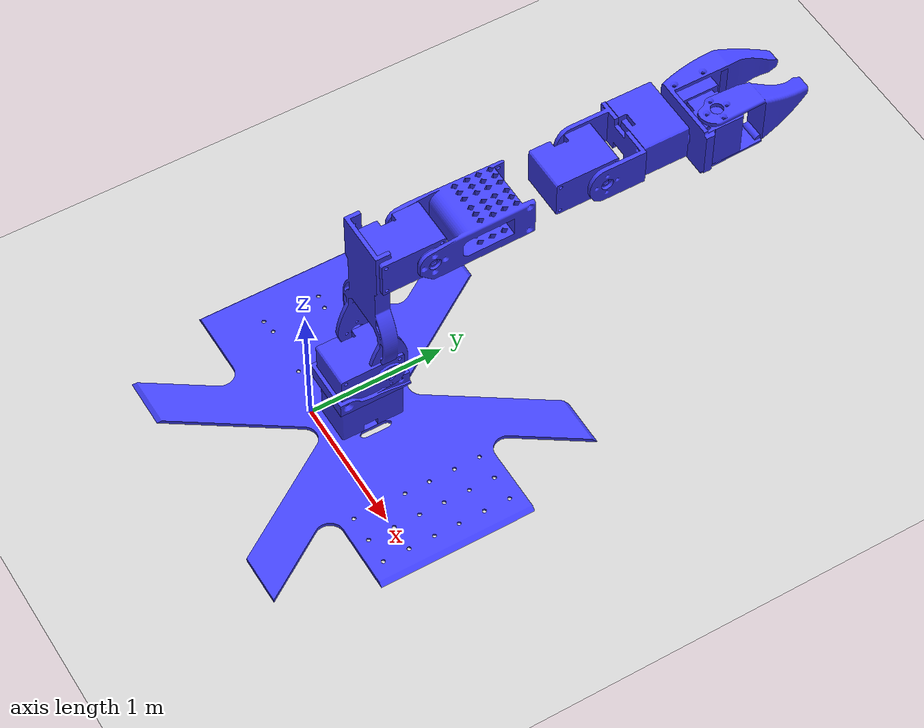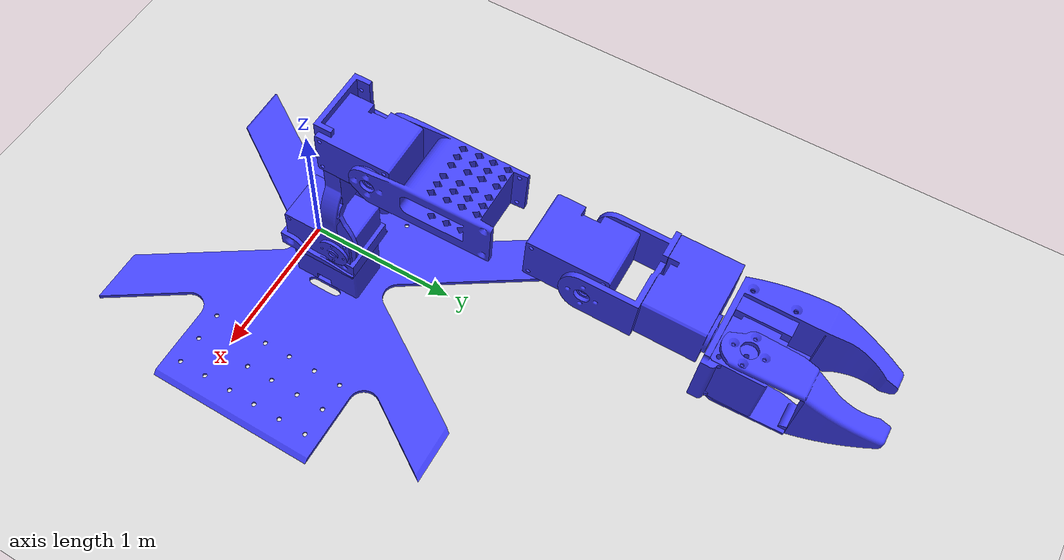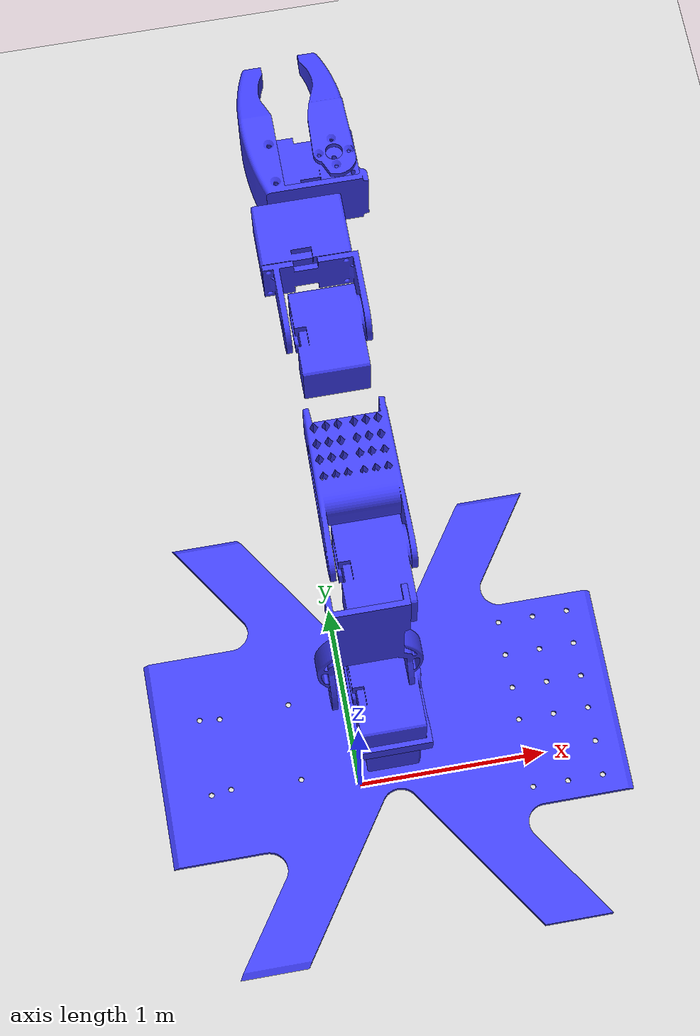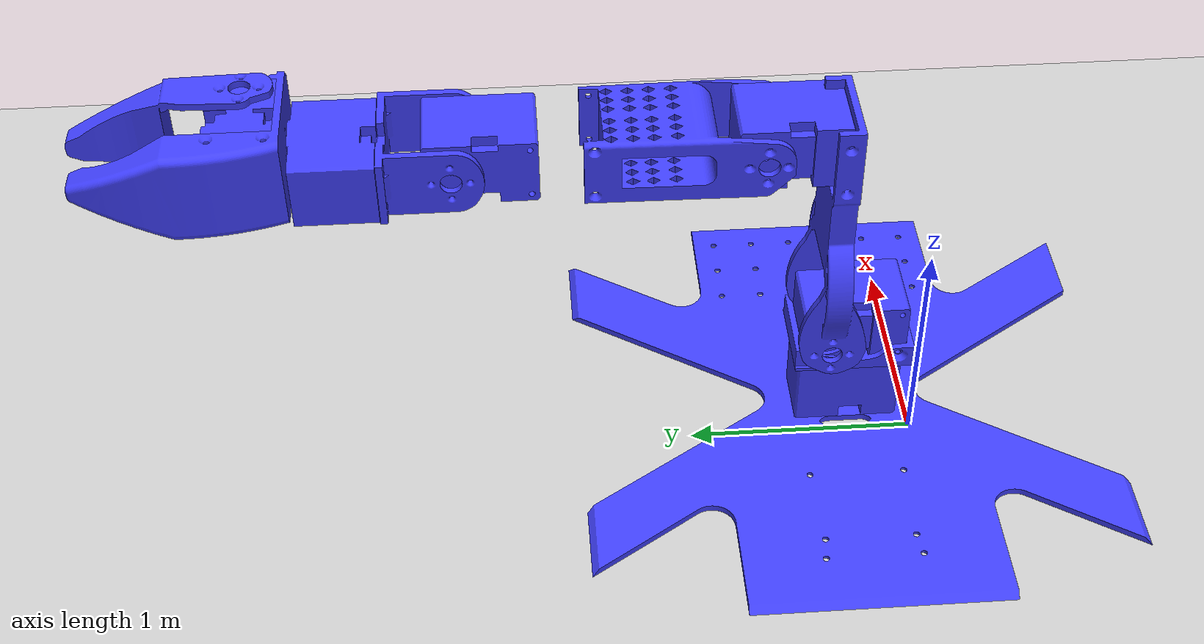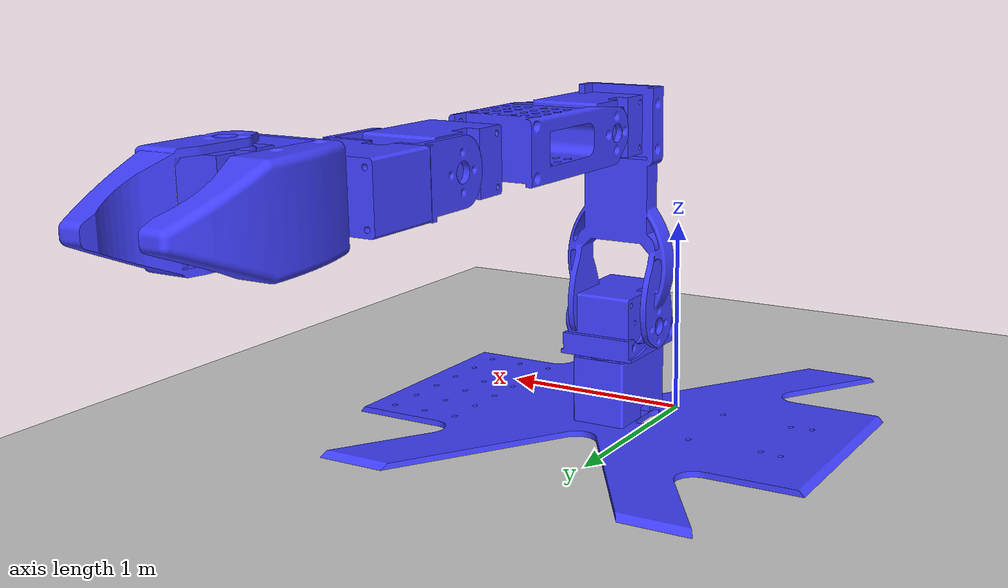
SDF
<?xml version="1.0" ?>
<sdf version="1.9">
  <world name="arm_world">

    <light type="directional" name="sun_light">
        <cast_shadows>true</cast_shadows>
        <pose>0 0 10 0 -0 0</pose>
        <diffuse>0.8 0.8 0.8 1</diffuse>
        <specular>0.1 0.1 0.1 1</specular>
        <attenuation>
            <range>1000</range>
            <constant>0.9</constant>
            <linear>0.01</linear>
            <quadratic>0.001</quadratic>
        </attenuation>
        <direction>-0.5 0.1 -0.9</direction>
    </light>

    <model name="ground_plane_model">
        <static>true</static>
        <link name="link">
            <collision name="collision">
                <geometry>
                    <plane>
                        <normal>0 0 1</normal>
                        <size>100 100</size>
                    </plane>
                </geometry>
            </collision>
            <visual name="visual">
                <geometry>
                    <plane>
                        <normal>0 0 1</normal>
                        <size>100 100</size>
                    </plane>
                </geometry>
                <material>
                    <ambient>0.8 0.8 0.8 1</ambient>
                    <diffuse>0.8 0.8 0.8 1</diffuse>
                    <specular>0.0 0.0 0.0 1</specular>
                </material>
            </visual>
        </link>
    </model>

    <include>
  	<uri>file:///home/gazebo-cad/Jaw_roboarm/src/jawarm_description/jaw.sdf</uri>
    </include>

  </world>
</sdf>

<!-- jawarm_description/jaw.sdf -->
<sdf version='1.11'>
  <model name='jawpixarm'>
    <link name='base_link'>
      <inertial>
        <pose>-0.2349740932642487 0.77388601036269433 0.022227979274611401 0 0 0</pose>
        <mass>0.077200000000000005</mass>
        <inertia>
          <ixx>0.01441117098445596</ixx>
          <ixy>0.015974507772020731</ixy>
          <ixz>-0.00048901554404145076</ixz>
          <iyy>0.018147906735751</iyy>
          <iyz>0.00043566847459289569</iyz>
          <izz>0.032448404145078019</izz>
        </inertia>
      </inertial>
      <collision name='base_link_collision'>
        <pose>-1.05 1.5 0 1.5708 0 0</pose>
        <geometry>
          <mesh>
            <scale>0.01 0.01 0.01</scale>
            <uri>meshes/base.STL</uri>
          </mesh>
        </geometry>
      </collision>
      <collision name='base_link_fixed_joint_lump__servo1_link_collision_1'>
        <pose>0.050000000000000003 0.52000000000000002 0.029999999999999999 1.5708 0 0</pose>
        <geometry>
          <mesh>
            <scale>0.01 0.01 0.01</scale>
            <uri>meshes/servo.STL</uri>
          </mesh>
        </geometry>
      </collision>
      <visual name='base_link_visual'>
        <pose>-1.05 1.5 0 1.5708 0 0</pose>
        <geometry>
          <mesh>
            <scale>0.01 0.01 0.01</scale>
            <uri>meshes/base.STL</uri>
          </mesh>
        </geometry>
        <material>
          <diffuse>0.25 0.25 1 1</diffuse>
          <ambient>0.25 0.25 1 1</ambient>
        </material>
      </visual>
      <visual name='base_link_fixed_joint_lump__servo1_link_visual_1'>
        <pose>0.050000000000000003 0.52000000000000002 0.029999999999999999 1.5708 0 0</pose>
        <geometry>
          <mesh>
            <scale>0.01 0.01 0.01</scale>
            <uri>meshes/servo.STL</uri>
          </mesh>
        </geometry>
        <material>
          <diffuse>0.25 0.25 1 1</diffuse>
          <ambient>0.25 0.25 1 1</ambient>
        </material>
      </visual>
    </link>
    <joint name='baseToshoulder_to_p1' type='revolute'>
      <pose relative_to='base_link'>0.19 0.40999999999999998 0.40000000000000002 0 0 0</pose>
      <parent>base_link</parent>
      <child>baseToshoulder_link</child>
      <axis>
        <xyz>0 0 1</xyz>
        <limit>
          <lower>-1.5700000000000001</lower>
          <upper>1.5700000000000001</upper>
          <effort>10</effort>
          <velocity>1</velocity>
        </limit>
        <dynamics>
          <spring_reference>0</spring_reference>
          <spring_stiffness>0</spring_stiffness>
        </dynamics>
      </axis>
    </joint>
    <link name='baseToshoulder_link'>
      <pose relative_to='baseToshoulder_to_p1'>0 0 0 0 0 0</pose>
      <inertial>
        <pose>0.070833333333333345 0.50363095238095235 0.085059523809523807 0 0 0</pose>
        <mass>0.067199999999999996</mass>
        <inertia>
          <ixx>0.001340273809523812</ixx>
          <ixy>0.00013108333333333331</ixy>
          <ixz>-0.00044091666666666682</ixz>
          <iyy>0.0014451130952377979</iyy>
          <iyz>0.00034643460462003553</iyz>
          <izz>0.00036782738095268719</izz>
        </inertia>
      </inertial>
      <collision name='baseToshoulder_link_collision'>
        <pose>-0.20000000000000001 -0.38800000000000001 -0.20000000000000001 0 0 0</pose>
        <geometry>
          <mesh>
            <scale>0.01 0.01 0.01</scale>
            <uri>meshes/base_to_shoulder.STL</uri>
          </mesh>
        </geometry>
      </collision>
      <collision name='baseToshoulder_link_fixed_joint_lump__servo2_link_collision_1'>
        <pose>-0.17000000000000001 0.109 0.29999999999999999 1.570796326794897 1.5707963267948966 0</pose>
        <geometry>
          <mesh>
            <scale>0.01 0.01 0.01</scale>
            <uri>meshes/servo.STL</uri>
          </mesh>
        </geometry>
      </collision>
      <visual name='baseToshoulder_link_visual'>
        <pose>-0.20000000000000001 -0.38800000000000001 -0.20000000000000001 0 0 0</pose>
        <geometry>
          <mesh>
            <scale>0.01 0.01 0.01</scale>
            <uri>meshes/base_to_shoulder.STL</uri>
          </mesh>
        </geometry>
        <material>
          <diffuse>0.25 0.25 1 1</diffuse>
          <ambient>0.25 0.25 1 1</ambient>
        </material>
      </visual>
      <visual name='baseToshoulder_link_fixed_joint_lump__servo2_link_visual_1'>
        <pose>-0.17000000000000001 0.109 0.29999999999999999 1.570796326794897 1.5707963267948966 0</pose>
        <geometry>
          <mesh>
            <scale>0.01 0.01 0.01</scale>
            <uri>meshes/servo.STL</uri>
          </mesh>
        </geometry>
        <material>
          <diffuse>0.25 0.25 1 1</diffuse>
          <ambient>0.25 0.25 1 1</ambient>
        </material>
      </visual>
    </link>
    <joint name='shoulder_to_p2' type='revolute'>
      <pose relative_to='baseToshoulder_link'>0.19 -0.001 0.155 3.1415926535897931 1.5707926536359933 3.1415926535897931</pose>
      <parent>baseToshoulder_link</parent>
      <child>shoulder_link</child>
      <axis>
        <xyz>0 0 1</xyz>
        <limit>
          <lower>-1.5700000000000001</lower>
          <upper>1.5700000000000001</upper>
          <effort>10</effort>
          <velocity>1</velocity>
        </limit>
        <dynamics>
          <spring_reference>0</spring_reference>
          <spring_stiffness>0</spring_stiffness>
        </dynamics>
      </axis>
    </joint>
    <link name='shoulder_link'>
      <pose relative_to='shoulder_to_p2'>0 0 0 0 0 0</pose>
      <inertial>
        <pose>0.070833333333333345 0.44247023809523822 0.048601190476190471 0 0 0</pose>
        <mass>0.067199999999999996</mass>
        <inertia>
          <ixx>0.0025154784523809481</ixx>
          <ixy>0.00062085833333333377</ixy>
          <ixz>-0.0001489583333333333</ixz>
          <iyy>0.00041283184523779832</iyy>
          <iyz>0.0005543378784295599</iyz>
          <izz>0.0025753132738098208</izz>
        </inertia>
      </inertial>
      <collision name='shoulder_link_collision'>
        <pose>0.11 0.157 0.029999999999999999 -3.1415000000000002 1.5707963267948966 0</pose>
        <geometry>
          <mesh>
            <scale>0.01 0.01 0.01</scale>
            <uri>meshes/shoulder.STL</uri>
          </mesh>
        </geometry>
      </collision>
      <collision name='shoulder_link_fixed_joint_lump__servo3_link_collision_1'>
        <pose>-1.139 0.43099999999999999 -0.35999999999999999 1.5707926535897929 9.2653589793057284e-05 -9.265358979305727e-05</pose>
        <geometry>
          <mesh>
            <scale>0.01 0.01 0.01</scale>
            <uri>meshes/servo.STL</uri>
          </mesh>
        </geometry>
      </collision>
      <visual name='shoulder_link_visual'>
        <pose>0.11 0.157 0.029999999999999999 -3.1415000000000002 1.5707963267948966 0</pose>
        <geometry>
          <mesh>
            <scale>0.01 0.01 0.01</scale>
            <uri>meshes/shoulder.STL</uri>
          </mesh>
        </geometry>
        <material>
          <diffuse>0.25 0.25 1 1</diffuse>
          <ambient>0.25 0.25 1 1</ambient>
        </material>
      </visual>
      <visual name='shoulder_link_fixed_joint_lump__servo3_link_visual_1'>
        <pose>-1.139 0.43099999999999999 -0.35999999999999999 1.5707926535897929 9.2653589793057284e-05 -9.265358979305727e-05</pose>
        <geometry>
          <mesh>
            <scale>0.01 0.01 0.01</scale>
            <uri>meshes/servo.STL</uri>
          </mesh>
        </geometry>
        <material>
          <diffuse>0.25 0.25 1 1</diffuse>
          <ambient>0.25 0.25 1 1</ambient>
        </material>
      </visual>
    </link>
    <joint name='elbow_to_p3' type='revolute'>
      <pose relative_to='shoulder_link'>-1 0.32000000000000001 0 0 0 -1.5708</pose>
      <parent>shoulder_link</parent>
      <child>elbow_link</child>
      <axis>
        <xyz>0 0 1</xyz>
        <limit>
          <lower>-1.5700000000000001</lower>
          <upper>1.5700000000000001</upper>
          <effort>10</effort>
          <velocity>1</velocity>
        </limit>
        <dynamics>
          <spring_reference>0</spring_reference>
          <spring_stiffness>0</spring_stiffness>
        </dynamics>
      </axis>
    </joint>
    <link name='elbow_link'>
      <pose relative_to='elbow_to_p3'>0 0 0 0 0 0</pose>
      <inertial>
        <pose>-0.10625 0.49023809523809531 0.02553571428571428 0 0 0</pose>
        <mass>0.067199999999999996</mass>
        <inertia>
          <ixx>0.00042013690476190579</ixx>
          <ixy>-0.0017875</ixy>
          <ixz>-0.00026812500000000003</ixz>
          <iyy>0.0095050357142854175</iyy>
          <iyz>-5.107134776091639e-05</iyz>
          <izz>0.0098228511904764858</izz>
        </inertia>
      </inertial>
      <collision name='elbow_link_collision'>
        <pose>0.113 0.14799999999999999 0.029999999999999999 -3.1415000000000002 1.5707963267948966 0</pose>
        <geometry>
          <mesh>
            <scale>0.01 0.01 0.01</scale>
            <uri>meshes/elbow.STL</uri>
          </mesh>
        </geometry>
      </collision>
      <collision name='elbow_link_fixed_joint_lump__servo4_link_collision_1'>
        <pose>-1.3799999999999999 -0.13900000000000001 -0.35999999999999999 1.5708 -5.5511151231257827e-17 1.5708</pose>
        <geometry>
          <mesh>
            <scale>0.01 0.01 0.01</scale>
            <uri>meshes/servo.STL</uri>
          </mesh>
        </geometry>
      </collision>
      <visual name='elbow_link_visual'>
        <pose>0.113 0.14799999999999999 0.029999999999999999 -3.1415000000000002 1.5707963267948966 0</pose>
        <geometry>
          <mesh>
            <scale>0.01 0.01 0.01</scale>
            <uri>meshes/elbow.STL</uri>
          </mesh>
        </geometry>
        <material>
          <diffuse>0.25 0.25 1 1</diffuse>
          <ambient>0.25 0.25 1 1</ambient>
        </material>
      </visual>
      <visual name='elbow_link_fixed_joint_lump__servo4_link_visual_1'>
        <pose>-1.3799999999999999 -0.13900000000000001 -0.35999999999999999 1.5708 -5.5511151231257827e-17 1.5708</pose>
        <geometry>
          <mesh>
            <scale>0.01 0.01 0.01</scale>
            <uri>meshes/servo.STL</uri>
          </mesh>
        </geometry>
        <material>
          <diffuse>0.25 0.25 1 1</diffuse>
          <ambient>0.25 0.25 1 1</ambient>
        </material>
      </visual>
    </link>
    <joint name='wrist_to_p4' type='revolute'>
      <pose relative_to='elbow_link'>-1.268 0.0050000000000000001 0 0 0 -1.5708</pose>
      <parent>elbow_link</parent>
      <child>wrist_link</child>
      <axis>
        <xyz>0 0 1</xyz>
        <limit>
          <lower>-1.5700000000000001</lower>
          <upper>1.5700000000000001</upper>
          <effort>10</effort>
          <velocity>1</velocity>
        </limit>
        <dynamics>
          <spring_reference>0</spring_reference>
          <spring_stiffness>0</spring_stiffness>
        </dynamics>
      </axis>
    </joint>
    <link name='wrist_link'>
      <pose relative_to='wrist_to_p4'>0 0 0 0 0 0</pose>
      <inertial>
        <pose>-0.26614880952380948 0.20502976190476191 0.02553571428571428 0 0 0</pose>
        <mass>0.067199999999999996</mass>
        <inertia>
          <ixx>0.00054973065476190399</ixx>
          <ixy>-0.0023543502976190469</ixy>
          <ixz>-0.0003005553571428571</ixz>
          <iyy>0.01191244922619018</iyy>
          <iyz>-6.0008847760916377e-05</iyz>
          <izz>0.01235985845238125</izz>
        </inertia>
      </inertial>
      <collision name='wrist_link_collision'>
        <pose>0.1429 -0.28770000000000001 0.029999999999999999 -1.5707036732051038 1.5707963057214724 0</pose>
        <geometry>
          <mesh>
            <scale>0.01 0.01 0.01</scale>
            <uri>meshes/wrist.STL</uri>
          </mesh>
        </geometry>
      </collision>
      <collision name='wrist_link_fixed_joint_lump__servo5_link_collision_1'>
        <pose>-0.14099999999999999 -0.28999999999999998 0 3.1415000000000002 0 0</pose>
        <geometry>
          <mesh>
            <scale>0.01 0.01 0.01</scale>
            <uri>meshes/servo.STL</uri>
          </mesh>
        </geometry>
      </collision>
      <visual name='wrist_link_visual'>
        <pose>0.1429 -0.28770000000000001 0.029999999999999999 -1.5707036732051038 1.5707963057214724 0</pose>
        <geometry>
          <mesh>
            <scale>0.01 0.01 0.01</scale>
            <uri>meshes/wrist.STL</uri>
          </mesh>
        </geometry>
        <material>
          <diffuse>0.25 0.25 1 1</diffuse>
          <ambient>0.25 0.25 1 1</ambient>
        </material>
      </visual>
      <visual name='wrist_link_fixed_joint_lump__servo5_link_visual_1'>
        <pose>-0.14099999999999999 -0.28999999999999998 0 3.1415000000000002 0 0</pose>
        <geometry>
          <mesh>
            <scale>0.01 0.01 0.01</scale>
            <uri>meshes/servo.STL</uri>
          </mesh>
        </geometry>
        <material>
          <diffuse>0.25 0.25 1 1</diffuse>
          <ambient>0.25 0.25 1 1</ambient>
        </material>
      </visual>
    </link>
    <joint name='staticgrip_to_p5' type='revolute'>
      <pose relative_to='wrist_link'>-0.002000422419524583 -0.66000000000000003 -0.11500051057473359 -1.5707926535897929 -7.3464102067221545e-06 3.1415926535897931</pose>
      <parent>wrist_link</parent>
      <child>staticgrip_link</child>
      <axis>
        <xyz>0 0 1</xyz>
        <limit>
          <lower>-1.5700000000000001</lower>
          <upper>1.5700000000000001</upper>
          <effort>10</effort>
          <velocity>1</velocity>
        </limit>
        <dynamics>
          <spring_reference>0</spring_reference>
          <spring_stiffness>0</spring_stiffness>
        </dynamics>
      </axis>
    </joint>
    <link name='staticgrip_link'>
      <pose relative_to='staticgrip_to_p5'>0 0 0 0 0 0</pose>
      <inertial>
        <pose>-0.060345238095238077 0.1477380952380952 0.046220238095238099 0 0 0</pose>
        <mass>0.067199999999999996</mass>
        <inertia>
          <ixx>0.003445106130952379</ixx>
          <ixy>0.0010871404761904761</ixy>
          <ixz>-0.00019112630952380959</ixz>
          <iyy>0.00057534113095208408</iyy>
          <iyz>0.0005752346046200361</iyz>
          <izz>0.00373118738095268</izz>
        </inertia>
      </inertial>
      <collision name='staticgrip_link_collision'>
        <pose>0.20000000000000001 0.33500000000000002 0 1.5708 0 -1.570885307179587</pose>
        <geometry>
          <mesh>
            <scale>0.01 0.01 0.01</scale>
            <uri>meshes/static_gripper.STL</uri>
          </mesh>
        </geometry>
      </collision>
      <collision name='staticgrip_link_fixed_joint_lump__servo6_link_collision_1'>
        <pose>-0.17349999999999999 -0.23000000000000001 0.029999999999999999 -1.5708889803846893 -1.5707963267948966 0</pose>
        <geometry>
          <mesh>
            <scale>0.01 0.01 0.01</scale>
            <uri>meshes/servo.STL</uri>
          </mesh>
        </geometry>
      </collision>
      <visual name='staticgrip_link_visual'>
        <pose>0.20000000000000001 0.33500000000000002 0 1.5708 0 -1.570885307179587</pose>
        <geometry>
          <mesh>
            <scale>0.01 0.01 0.01</scale>
            <uri>meshes/static_gripper.STL</uri>
          </mesh>
        </geometry>
        <material>
          <diffuse>0.25 0.25 1 1</diffuse>
          <ambient>0.25 0.25 1 1</ambient>
        </material>
      </visual>
      <visual name='staticgrip_link_fixed_joint_lump__servo6_link_visual_1'>
        <pose>-0.17349999999999999 -0.23000000000000001 0.029999999999999999 -1.5708889803846893 -1.5707963267948966 0</pose>
        <geometry>
          <mesh>
            <scale>0.01 0.01 0.01</scale>
            <uri>meshes/servo.STL</uri>
          </mesh>
        </geometry>
        <material>
          <diffuse>0.25 0.25 1 1</diffuse>
          <ambient>0.25 0.25 1 1</ambient>
        </material>
      </visual>
    </link>
    <joint name='mobilegrip_to_p6' type='revolute'>
      <pose relative_to='staticgrip_link'>0.19400000000000001 -0.1149842495979944 0.16998471142800761 -1.5707926532494578 -7.3464102061765679e-06 -1.5707999999999871</pose>
      <parent>staticgrip_link</parent>
      <child>mobilegrip_link</child>
      <axis>
        <xyz>0 0 1</xyz>
        <limit>
          <lower>-1.5700000000000001</lower>
          <upper>1.5700000000000001</upper>
          <effort>10</effort>
          <velocity>1</velocity>
        </limit>
        <dynamics>
          <spring_reference>0</spring_reference>
          <spring_stiffness>0</spring_stiffness>
        </dynamics>
      </axis>
    </joint>
    <link name='mobilegrip_link'>
      <pose relative_to='mobilegrip_to_p6'>0 0 0 0 0 0</pose>
      <inertial>
        <pose>0 0 0 0 0 0</pose>
        <mass>0.01</mass>
        <inertia>
          <ixx>1.0000000000000001e-05</ixx>
          <ixy>0</ixy>
          <ixz>0</ixz>
          <iyy>1.2999999999999999e-05</iyy>
          <iyz>0</iyz>
          <izz>2.0000000000000002e-05</izz>
        </inertia>
      </inertial>
      <collision name='mobilegrip_link_collision'>
        <pose>0.1125 0.13 -0.41499999999999998 0 0 3.1415000000000002</pose>
        <geometry>
          <mesh>
            <scale>0.01 0.01 0.01</scale>
            <uri>meshes/mobile_gripper.STL</uri>
          </mesh>
        </geometry>
      </collision>
      <visual name='mobilegrip_link_visual'>
        <pose>0.1125 0.13 -0.41499999999999998 0 0 3.1415000000000002</pose>
        <geometry>
          <mesh>
            <scale>0.01 0.01 0.01</scale>
            <uri>meshes/mobile_gripper.STL</uri>
          </mesh>
        </geometry>
        <material>
          <diffuse>0.25 0.25 1 1</diffuse>
          <ambient>0.25 0.25 1 1</ambient>
        </material>
      </visual>
    </link>
    <frame name='p1_to_servo1' attached_to='servo1_link'>
      <pose>0.19 0.40999999999999998 0.40000000000000002 0 0 0</pose>
    </frame>
    <frame name='p1_link' attached_to='p1_to_servo1'>
      <pose>0 0 0 0 0 0</pose>
    </frame>
    <frame name='p2_to_servo2' attached_to='servo2_link'>
      <pose>0.19 -0.001 0.155 3.1415926535897931 1.5707926536359933 3.1415926535897931</pose>
    </frame>
    <frame name='p2_link' attached_to='p2_to_servo2'>
      <pose>0 0 0 0 0 0</pose>
    </frame>
    <frame name='p3_to_servo3' attached_to='servo3_link'>
      <pose>-1 0.32000000000000001 0 0 0 0</pose>
    </frame>
    <frame name='p3_link' attached_to='p3_to_servo3'>
      <pose>0 0 0 0 0 0</pose>
    </frame>
    <frame name='p4_to_servo4' attached_to='servo4_link'>
      <pose>-1.268 0.0050000000000000001 0 0 0 0</pose>
    </frame>
    <frame name='p4_link' attached_to='p4_to_servo4'>
      <pose>0 0 0 0 0 0</pose>
    </frame>
    <frame name='p5_to_servo5' attached_to='servo5_link'>
      <pose>0 0 0 3.1415926535897931 1.5707926536359933 3.1415926535897931</pose>
    </frame>
    <frame name='p5_link' attached_to='p5_to_servo5'>
      <pose>0 0 0 0 0 0</pose>
    </frame>
    <frame name='p6_to_servo6' attached_to='servo6_link'>
      <pose>0 0 0 3.1415000000000002 0 0</pose>
    </frame>
    <frame name='p6_link' attached_to='p6_to_servo6'>
      <pose>0 0 0 0 0 0</pose>
    </frame>
    <frame name='servo6_to_staticgrip' attached_to='staticgrip_link'>
      <pose>-0.14099999999999999 -0.28000000000000003 0 0 0 0</pose>
    </frame>
    <frame name='servo6_link' attached_to='servo6_to_staticgrip'>
      <pose>0 0 0 0 0 0</pose>
    </frame>
    <frame name='servo5_to_wrist' attached_to='wrist_link'>
      <pose>-0.14099999999999999 -0.28000000000000003 0 0 0 0</pose>
    </frame>
    <frame name='servo5_link' attached_to='servo5_to_wrist'>
      <pose>0 0 0 0 0 0</pose>
    </frame>
    <frame name='servo4_to_elbow' attached_to='elbow_link'>
      <pose>0 0 0 0 0 0</pose>
    </frame>
    <frame name='servo4_link' attached_to='servo4_to_elbow'>
      <pose>0 0 0 0 0 0</pose>
    </frame>
    <frame name='servo3_to_shoulder' attached_to='shoulder_link'>
      <pose>0 0 0 0 0 0</pose>
    </frame>
    <frame name='servo3_link' attached_to='servo3_to_shoulder'>
      <pose>0 0 0 0 0 0</pose>
    </frame>
    <frame name='servo2_to_baseToshoulder' attached_to='baseToshoulder_link'>
      <pose>0 0 0 0 0 0</pose>
    </frame>
    <frame name='servo2_link' attached_to='servo2_to_baseToshoulder'>
      <pose>0 0 0 0 0 0</pose>
    </frame>
    <frame name='servo1_base' attached_to='base_link'>
      <pose>0 0 0 0 0 0</pose>
    </frame>
    <frame name='servo1_link' attached_to='servo1_base'>
      <pose>0 0 0 0 0 0</pose>
    </frame>
  </model>
</sdf>
